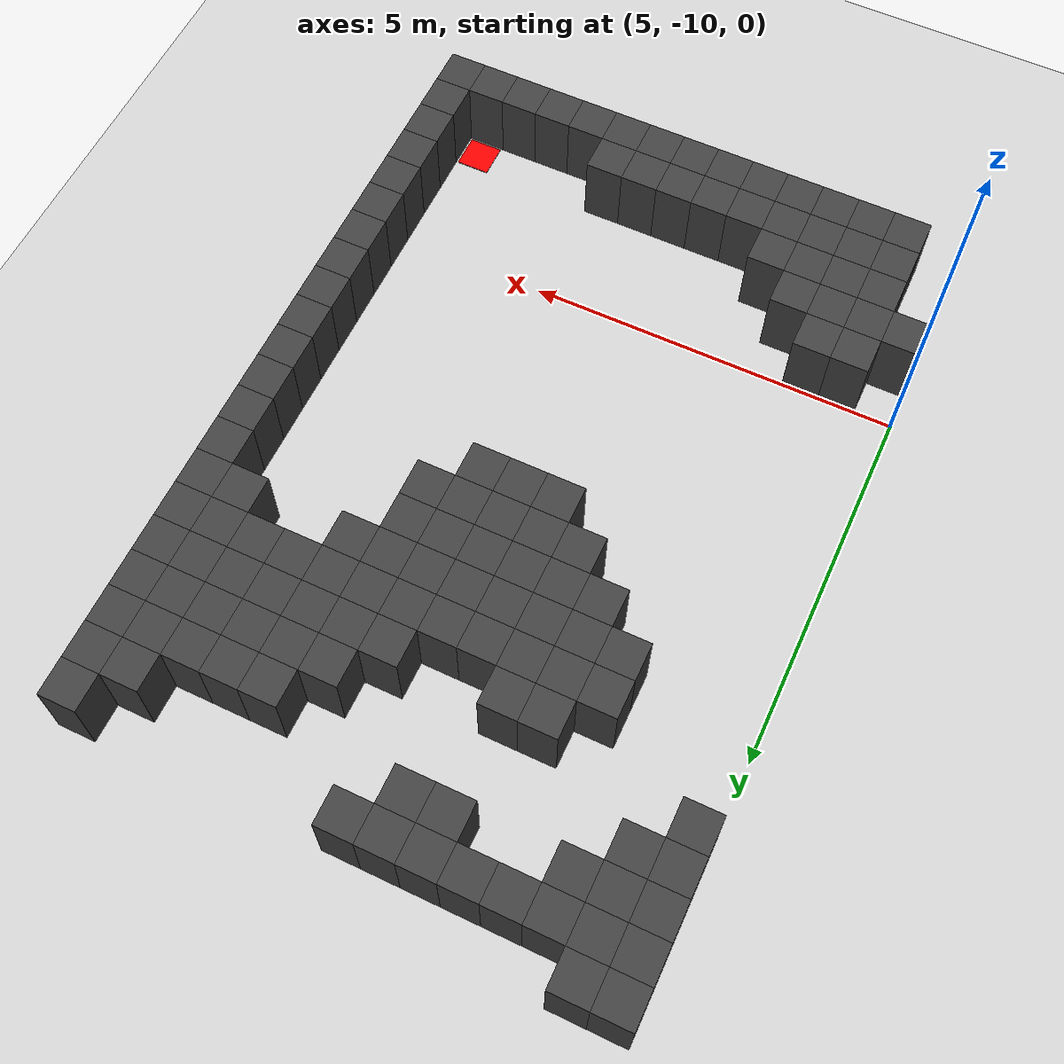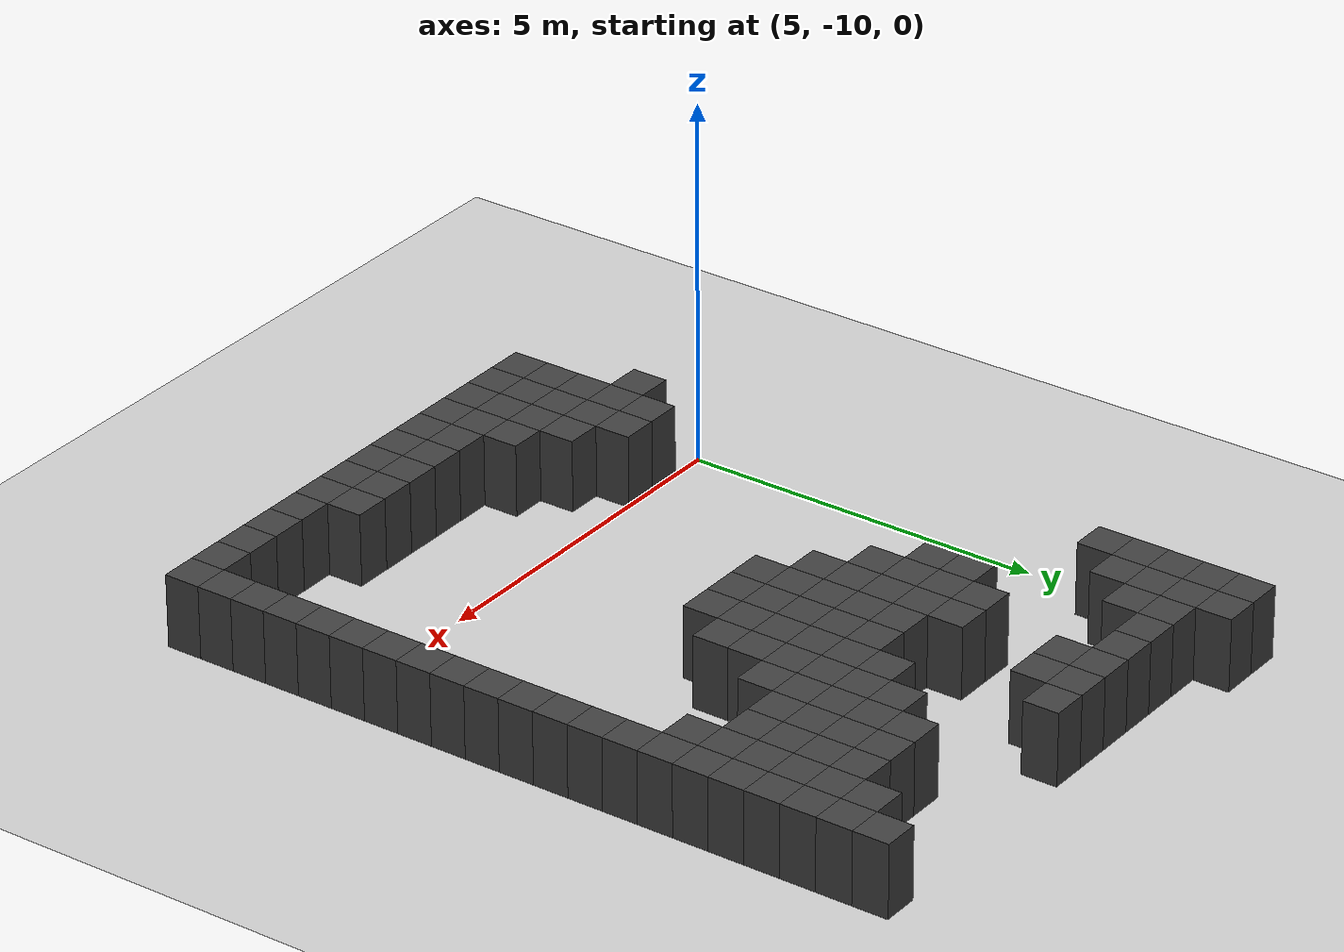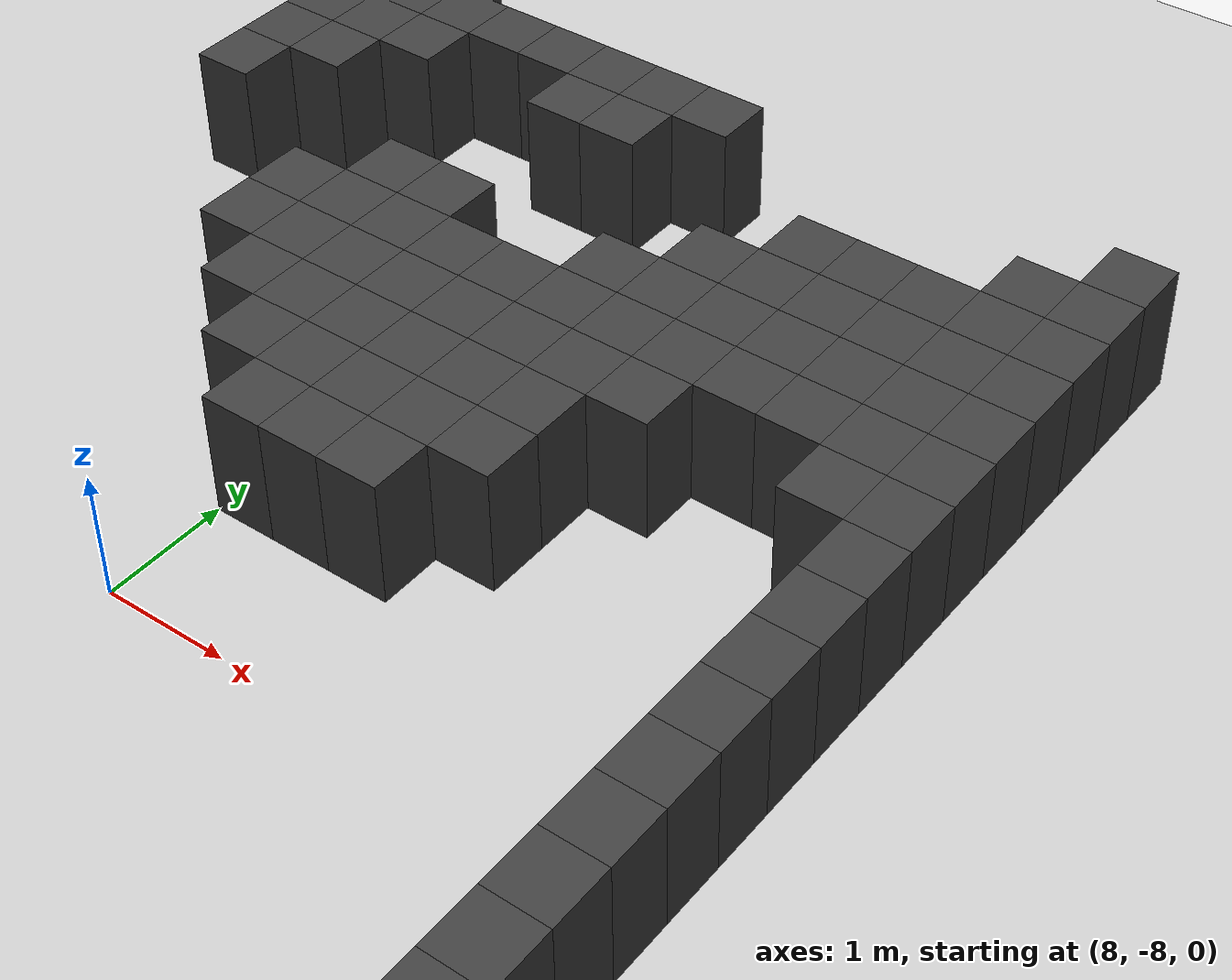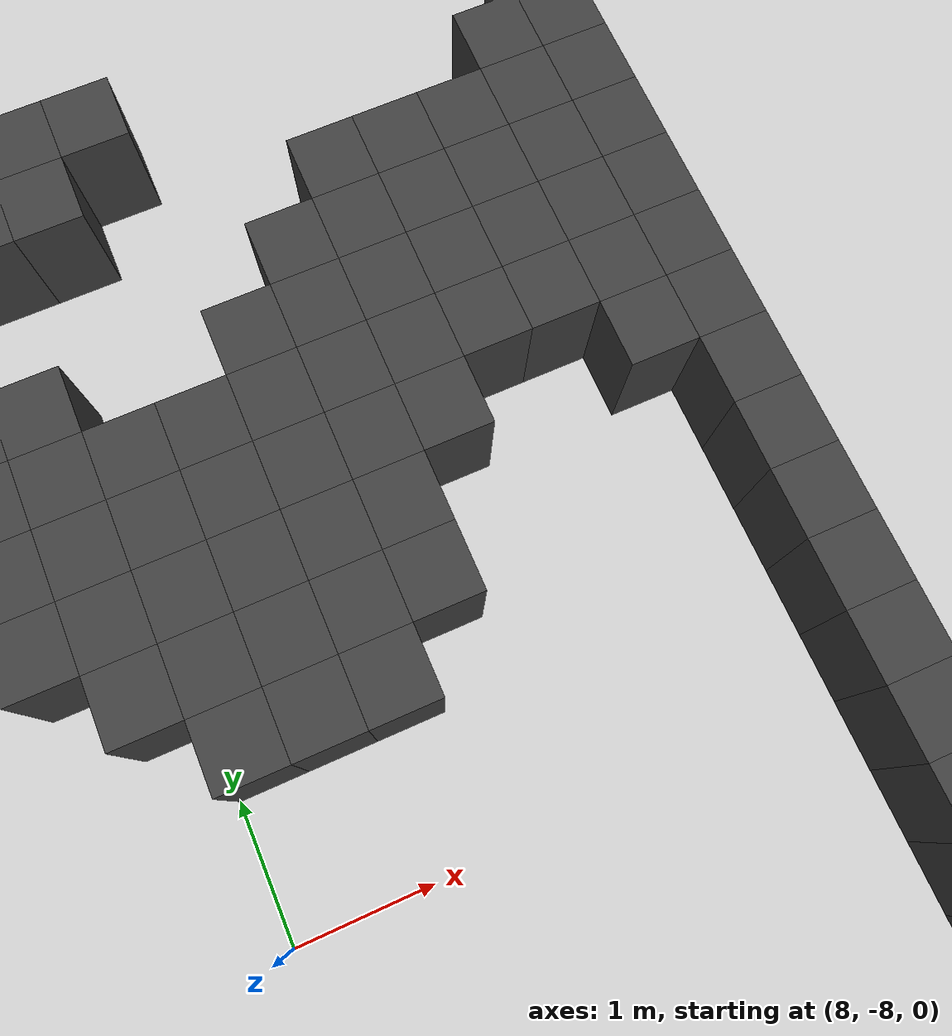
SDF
<sdf version="1.7">
 <world name="map_8382">
  <model name="ground_plane">
   <static>true</static>
   <link name="link">
    <collision name="collision">
     <geometry><plane><normal>0 0 1</normal><size>200 200</size></plane></geometry>
    </collision>
    <visual name="visual">
     <geometry><plane><normal>0 0 1</normal><size>200 200</size></plane></geometry>
     <material><ambient>0.8 0.8 0.8 1</ambient><diffuse>0.8 0.8 0.8 1</diffuse></material>
    </visual>
   </link>
  </model>
  <model name="maze_environment">
   <static>true</static>
   <link name="wall_463">
    <pose>5.250 -1.750 0.500 0 0 0</pose>
    <collision name="col"><geometry><box><size>0.5 0.5 1.0</size></box></geometry></collision>
    <visual name="vis">
     <geometry><box><size>0.5 0.5 1.0</size></box></geometry>
     <material><ambient>0.15 0.15 0.15 1</ambient><diffuse>0.25 0.25 0.25 1</diffuse></material>
    </visual>
   </link>
   <link name="wall_464">
    <pose>5.750 -1.750 0.500 0 0 0</pose>
    <collision name="col"><geometry><box><size>0.5 0.5 1.0</size></box></geometry></collision>
    <visual name="vis">
     <geometry><box><size>0.5 0.5 1.0</size></box></geometry>
     <material><ambient>0.15 0.15 0.15 1</ambient><diffuse>0.25 0.25 0.25 1</diffuse></material>
    </visual>
   </link>
   <link name="wall_481">
    <pose>5.250 -2.250 0.500 0 0 0</pose>
    <collision name="col"><geometry><box><size>0.5 0.5 1.0</size></box></geometry></collision>
    <visual name="vis">
     <geometry><box><size>0.5 0.5 1.0</size></box></geometry>
     <material><ambient>0.15 0.15 0.15 1</ambient><diffuse>0.25 0.25 0.25 1</diffuse></material>
    </visual>
   </link>
   <link name="wall_482">
    <pose>5.750 -2.250 0.500 0 0 0</pose>
    <collision name="col"><geometry><box><size>0.5 0.5 1.0</size></box></geometry></collision>
    <visual name="vis">
     <geometry><box><size>0.5 0.5 1.0</size></box></geometry>
     <material><ambient>0.15 0.15 0.15 1</ambient><diffuse>0.25 0.25 0.25 1</diffuse></material>
    </visual>
   </link>
   <link name="wall_483">
    <pose>6.250 -2.250 0.500 0 0 0</pose>
    <collision name="col"><geometry><box><size>0.5 0.5 1.0</size></box></geometry></collision>
    <visual name="vis">
     <geometry><box><size>0.5 0.5 1.0</size></box></geometry>
     <material><ambient>0.15 0.15 0.15 1</ambient><diffuse>0.25 0.25 0.25 1</diffuse></material>
    </visual>
   </link>
   <link name="wall_484">
    <pose>6.750 -2.250 0.500 0 0 0</pose>
    <collision name="col"><geometry><box><size>0.5 0.5 1.0</size></box></geometry></collision>
    <visual name="vis">
     <geometry><box><size>0.5 0.5 1.0</size></box></geometry>
     <material><ambient>0.15 0.15 0.15 1</ambient><diffuse>0.25 0.25 0.25 1</diffuse></material>
    </visual>
   </link>
   <link name="wall_485">
    <pose>7.250 -2.250 0.500 0 0 0</pose>
    <collision name="col"><geometry><box><size>0.5 0.5 1.0</size></box></geometry></collision>
    <visual name="vis">
     <geometry><box><size>0.5 0.5 1.0</size></box></geometry>
     <material><ambient>0.15 0.15 0.15 1</ambient><diffuse>0.25 0.25 0.25 1</diffuse></material>
    </visual>
   </link>
   <link name="wall_486">
    <pose>7.750 -2.250 0.500 0 0 0</pose>
    <collision name="col"><geometry><box><size>0.5 0.5 1.0</size></box></geometry></collision>
    <visual name="vis">
     <geometry><box><size>0.5 0.5 1.0</size></box></geometry>
     <material><ambient>0.15 0.15 0.15 1</ambient><diffuse>0.25 0.25 0.25 1</diffuse></material>
    </visual>
   </link>
   <link name="wall_487">
    <pose>8.250 -2.250 0.500 0 0 0</pose>
    <collision name="col"><geometry><box><size>0.5 0.5 1.0</size></box></geometry></collision>
    <visual name="vis">
     <geometry><box><size>0.5 0.5 1.0</size></box></geometry>
     <material><ambient>0.15 0.15 0.15 1</ambient><diffuse>0.25 0.25 0.25 1</diffuse></material>
    </visual>
   </link>
   <link name="wall_488">
    <pose>8.750 -2.250 0.500 0 0 0</pose>
    <collision name="col"><geometry><box><size>0.5 0.5 1.0</size></box></geometry></collision>
    <visual name="vis">
     <geometry><box><size>0.5 0.5 1.0</size></box></geometry>
     <material><ambient>0.15 0.15 0.15 1</ambient><diffuse>0.25 0.25 0.25 1</diffuse></material>
    </visual>
   </link>
   <link name="wall_489">
    <pose>12.250 -2.250 0.500 0 0 0</pose>
    <collision name="col"><geometry><box><size>0.5 0.5 1.0</size></box></geometry></collision>
    <visual name="vis">
     <geometry><box><size>0.5 0.5 1.0</size></box></geometry>
     <material><ambient>0.15 0.15 0.15 1</ambient><diffuse>0.25 0.25 0.25 1</diffuse></material>
    </visual>
   </link>
   <link name="wall_503">
    <pose>5.250 -2.750 0.500 0 0 0</pose>
    <collision name="col"><geometry><box><size>0.5 0.5 1.0</size></box></geometry></collision>
    <visual name="vis">
     <geometry><box><size>0.5 0.5 1.0</size></box></geometry>
     <material><ambient>0.15 0.15 0.15 1</ambient><diffuse>0.25 0.25 0.25 1</diffuse></material>
    </visual>
   </link>
   <link name="wall_504">
    <pose>5.750 -2.750 0.500 0 0 0</pose>
    <collision name="col"><geometry><box><size>0.5 0.5 1.0</size></box></geometry></collision>
    <visual name="vis">
     <geometry><box><size>0.5 0.5 1.0</size></box></geometry>
     <material><ambient>0.15 0.15 0.15 1</ambient><diffuse>0.25 0.25 0.25 1</diffuse></material>
    </visual>
   </link>
   <link name="wall_505">
    <pose>6.250 -2.750 0.500 0 0 0</pose>
    <collision name="col"><geometry><box><size>0.5 0.5 1.0</size></box></geometry></collision>
    <visual name="vis">
     <geometry><box><size>0.5 0.5 1.0</size></box></geometry>
     <material><ambient>0.15 0.15 0.15 1</ambient><diffuse>0.25 0.25 0.25 1</diffuse></material>
    </visual>
   </link>
   <link name="wall_506">
    <pose>7.750 -2.750 0.500 0 0 0</pose>
    <collision name="col"><geometry><box><size>0.5 0.5 1.0</size></box></geometry></collision>
    <visual name="vis">
     <geometry><box><size>0.5 0.5 1.0</size></box></geometry>
     <material><ambient>0.15 0.15 0.15 1</ambient><diffuse>0.25 0.25 0.25 1</diffuse></material>
    </visual>
   </link>
   <link name="wall_507">
    <pose>8.250 -2.750 0.500 0 0 0</pose>
    <collision name="col"><geometry><box><size>0.5 0.5 1.0</size></box></geometry></collision>
    <visual name="vis">
     <geometry><box><size>0.5 0.5 1.0</size></box></geometry>
     <material><ambient>0.15 0.15 0.15 1</ambient><diffuse>0.25 0.25 0.25 1</diffuse></material>
    </visual>
   </link>
   <link name="wall_508">
    <pose>11.750 -2.750 0.500 0 0 0</pose>
    <collision name="col"><geometry><box><size>0.5 0.5 1.0</size></box></geometry></collision>
    <visual name="vis">
     <geometry><box><size>0.5 0.5 1.0</size></box></geometry>
     <material><ambient>0.15 0.15 0.15 1</ambient><diffuse>0.25 0.25 0.25 1</diffuse></material>
    </visual>
   </link>
   <link name="wall_509">
    <pose>12.250 -2.750 0.500 0 0 0</pose>
    <collision name="col"><geometry><box><size>0.5 0.5 1.0</size></box></geometry></collision>
    <visual name="vis">
     <geometry><box><size>0.5 0.5 1.0</size></box></geometry>
     <material><ambient>0.15 0.15 0.15 1</ambient><diffuse>0.25 0.25 0.25 1</diffuse></material>
    </visual>
   </link>
   <link name="wall_526">
    <pose>5.250 -3.250 0.500 0 0 0</pose>
    <collision name="col"><geometry><box><size>0.5 0.5 1.0</size></box></geometry></collision>
    <visual name="vis">
     <geometry><box><size>0.5 0.5 1.0</size></box></geometry>
     <material><ambient>0.15 0.15 0.15 1</ambient><diffuse>0.25 0.25 0.25 1</diffuse></material>
    </visual>
   </link>
   <link name="wall_527">
    <pose>5.750 -3.250 0.500 0 0 0</pose>
    <collision name="col"><geometry><box><size>0.5 0.5 1.0</size></box></geometry></collision>
    <visual name="vis">
     <geometry><box><size>0.5 0.5 1.0</size></box></geometry>
     <material><ambient>0.15 0.15 0.15 1</ambient><diffuse>0.25 0.25 0.25 1</diffuse></material>
    </visual>
   </link>
   <link name="wall_528">
    <pose>10.250 -3.250 0.500 0 0 0</pose>
    <collision name="col"><geometry><box><size>0.5 0.5 1.0</size></box></geometry></collision>
    <visual name="vis">
     <geometry><box><size>0.5 0.5 1.0</size></box></geometry>
     <material><ambient>0.15 0.15 0.15 1</ambient><diffuse>0.25 0.25 0.25 1</diffuse></material>
    </visual>
   </link>
   <link name="wall_529">
    <pose>10.750 -3.250 0.500 0 0 0</pose>
    <collision name="col"><geometry><box><size>0.5 0.5 1.0</size></box></geometry></collision>
    <visual name="vis">
     <geometry><box><size>0.5 0.5 1.0</size></box></geometry>
     <material><ambient>0.15 0.15 0.15 1</ambient><diffuse>0.25 0.25 0.25 1</diffuse></material>
    </visual>
   </link>
   <link name="wall_530">
    <pose>11.250 -3.250 0.500 0 0 0</pose>
    <collision name="col"><geometry><box><size>0.5 0.5 1.0</size></box></geometry></collision>
    <visual name="vis">
     <geometry><box><size>0.5 0.5 1.0</size></box></geometry>
     <material><ambient>0.15 0.15 0.15 1</ambient><diffuse>0.25 0.25 0.25 1</diffuse></material>
    </visual>
   </link>
   <link name="wall_531">
    <pose>11.750 -3.250 0.500 0 0 0</pose>
    <collision name="col"><geometry><box><size>0.5 0.5 1.0</size></box></geometry></collision>
    <visual name="vis">
     <geometry><box><size>0.5 0.5 1.0</size></box></geometry>
     <material><ambient>0.15 0.15 0.15 1</ambient><diffuse>0.25 0.25 0.25 1</diffuse></material>
    </visual>
   </link>
   <link name="wall_532">
    <pose>12.250 -3.250 0.500 0 0 0</pose>
    <collision name="col"><geometry><box><size>0.5 0.5 1.0</size></box></geometry></collision>
    <visual name="vis">
     <geometry><box><size>0.5 0.5 1.0</size></box></geometry>
     <material><ambient>0.15 0.15 0.15 1</ambient><diffuse>0.25 0.25 0.25 1</diffuse></material>
    </visual>
   </link>
   <link name="wall_553">
    <pose>5.250 -3.750 0.500 0 0 0</pose>
    <collision name="col"><geometry><box><size>0.5 0.5 1.0</size></box></geometry></collision>
    <visual name="vis">
     <geometry><box><size>0.5 0.5 1.0</size></box></geometry>
     <material><ambient>0.15 0.15 0.15 1</ambient><diffuse>0.25 0.25 0.25 1</diffuse></material>
    </visual>
   </link>
   <link name="wall_554">
    <pose>9.750 -3.750 0.500 0 0 0</pose>
    <collision name="col"><geometry><box><size>0.5 0.5 1.0</size></box></geometry></collision>
    <visual name="vis">
     <geometry><box><size>0.5 0.5 1.0</size></box></geometry>
     <material><ambient>0.15 0.15 0.15 1</ambient><diffuse>0.25 0.25 0.25 1</diffuse></material>
    </visual>
   </link>
   <link name="wall_555">
    <pose>10.250 -3.750 0.500 0 0 0</pose>
    <collision name="col"><geometry><box><size>0.5 0.5 1.0</size></box></geometry></collision>
    <visual name="vis">
     <geometry><box><size>0.5 0.5 1.0</size></box></geometry>
     <material><ambient>0.15 0.15 0.15 1</ambient><diffuse>0.25 0.25 0.25 1</diffuse></material>
    </visual>
   </link>
   <link name="wall_556">
    <pose>10.750 -3.750 0.500 0 0 0</pose>
    <collision name="col"><geometry><box><size>0.5 0.5 1.0</size></box></geometry></collision>
    <visual name="vis">
     <geometry><box><size>0.5 0.5 1.0</size></box></geometry>
     <material><ambient>0.15 0.15 0.15 1</ambient><diffuse>0.25 0.25 0.25 1</diffuse></material>
    </visual>
   </link>
   <link name="wall_557">
    <pose>11.250 -3.750 0.500 0 0 0</pose>
    <collision name="col"><geometry><box><size>0.5 0.5 1.0</size></box></geometry></collision>
    <visual name="vis">
     <geometry><box><size>0.5 0.5 1.0</size></box></geometry>
     <material><ambient>0.15 0.15 0.15 1</ambient><diffuse>0.25 0.25 0.25 1</diffuse></material>
    </visual>
   </link>
   <link name="wall_558">
    <pose>11.750 -3.750 0.500 0 0 0</pose>
    <collision name="col"><geometry><box><size>0.5 0.5 1.0</size></box></geometry></collision>
    <visual name="vis">
     <geometry><box><size>0.5 0.5 1.0</size></box></geometry>
     <material><ambient>0.15 0.15 0.15 1</ambient><diffuse>0.25 0.25 0.25 1</diffuse></material>
    </visual>
   </link>
   <link name="wall_559">
    <pose>12.250 -3.750 0.500 0 0 0</pose>
    <collision name="col"><geometry><box><size>0.5 0.5 1.0</size></box></geometry></collision>
    <visual name="vis">
     <geometry><box><size>0.5 0.5 1.0</size></box></geometry>
     <material><ambient>0.15 0.15 0.15 1</ambient><diffuse>0.25 0.25 0.25 1</diffuse></material>
    </visual>
   </link>
   <link name="wall_578">
    <pose>7.250 -4.250 0.500 0 0 0</pose>
    <collision name="col"><geometry><box><size>0.5 0.5 1.0</size></box></geometry></collision>
    <visual name="vis">
     <geometry><box><size>0.5 0.5 1.0</size></box></geometry>
     <material><ambient>0.15 0.15 0.15 1</ambient><diffuse>0.25 0.25 0.25 1</diffuse></material>
    </visual>
   </link>
   <link name="wall_579">
    <pose>7.750 -4.250 0.500 0 0 0</pose>
    <collision name="col"><geometry><box><size>0.5 0.5 1.0</size></box></geometry></collision>
    <visual name="vis">
     <geometry><box><size>0.5 0.5 1.0</size></box></geometry>
     <material><ambient>0.15 0.15 0.15 1</ambient><diffuse>0.25 0.25 0.25 1</diffuse></material>
    </visual>
   </link>
   <link name="wall_580">
    <pose>9.250 -4.250 0.500 0 0 0</pose>
    <collision name="col"><geometry><box><size>0.5 0.5 1.0</size></box></geometry></collision>
    <visual name="vis">
     <geometry><box><size>0.5 0.5 1.0</size></box></geometry>
     <material><ambient>0.15 0.15 0.15 1</ambient><diffuse>0.25 0.25 0.25 1</diffuse></material>
    </visual>
   </link>
   <link name="wall_581">
    <pose>9.750 -4.250 0.500 0 0 0</pose>
    <collision name="col"><geometry><box><size>0.5 0.5 1.0</size></box></geometry></collision>
    <visual name="vis">
     <geometry><box><size>0.5 0.5 1.0</size></box></geometry>
     <material><ambient>0.15 0.15 0.15 1</ambient><diffuse>0.25 0.25 0.25 1</diffuse></material>
    </visual>
   </link>
   <link name="wall_582">
    <pose>10.250 -4.250 0.500 0 0 0</pose>
    <collision name="col"><geometry><box><size>0.5 0.5 1.0</size></box></geometry></collision>
    <visual name="vis">
     <geometry><box><size>0.5 0.5 1.0</size></box></geometry>
     <material><ambient>0.15 0.15 0.15 1</ambient><diffuse>0.25 0.25 0.25 1</diffuse></material>
    </visual>
   </link>
   <link name="wall_583">
    <pose>10.750 -4.250 0.500 0 0 0</pose>
    <collision name="col"><geometry><box><size>0.5 0.5 1.0</size></box></geometry></collision>
    <visual name="vis">
     <geometry><box><size>0.5 0.5 1.0</size></box></geometry>
     <material><ambient>0.15 0.15 0.15 1</ambient><diffuse>0.25 0.25 0.25 1</diffuse></material>
    </visual>
   </link>
   <link name="wall_584">
    <pose>11.250 -4.250 0.500 0 0 0</pose>
    <collision name="col"><geometry><box><size>0.5 0.5 1.0</size></box></geometry></collision>
    <visual name="vis">
     <geometry><box><size>0.5 0.5 1.0</size></box></geometry>
     <material><ambient>0.15 0.15 0.15 1</ambient><diffuse>0.25 0.25 0.25 1</diffuse></material>
    </visual>
   </link>
   <link name="wall_585">
    <pose>11.750 -4.250 0.500 0 0 0</pose>
    <collision name="col"><geometry><box><size>0.5 0.5 1.0</size></box></geometry></collision>
    <visual name="vis">
     <geometry><box><size>0.5 0.5 1.0</size></box></geometry>
     <material><ambient>0.15 0.15 0.15 1</ambient><diffuse>0.25 0.25 0.25 1</diffuse></material>
    </visual>
   </link>
   <link name="wall_586">
    <pose>12.250 -4.250 0.500 0 0 0</pose>
    <collision name="col"><geometry><box><size>0.5 0.5 1.0</size></box></geometry></collision>
    <visual name="vis">
     <geometry><box><size>0.5 0.5 1.0</size></box></geometry>
     <material><ambient>0.15 0.15 0.15 1</ambient><diffuse>0.25 0.25 0.25 1</diffuse></material>
    </visual>
   </link>
   <link name="wall_596">
    <pose>6.750 -4.750 0.500 0 0 0</pose>
    <collision name="col"><geometry><box><size>0.5 0.5 1.0</size></box></geometry></collision>
    <visual name="vis">
     <geometry><box><size>0.5 0.5 1.0</size></box></geometry>
     <material><ambient>0.15 0.15 0.15 1</ambient><diffuse>0.25 0.25 0.25 1</diffuse></material>
    </visual>
   </link>
   <link name="wall_597">
    <pose>7.250 -4.750 0.500 0 0 0</pose>
    <collision name="col"><geometry><box><size>0.5 0.5 1.0</size></box></geometry></collision>
    <visual name="vis">
     <geometry><box><size>0.5 0.5 1.0</size></box></geometry>
     <material><ambient>0.15 0.15 0.15 1</ambient><diffuse>0.25 0.25 0.25 1</diffuse></material>
    </visual>
   </link>
   <link name="wall_598">
    <pose>7.750 -4.750 0.500 0 0 0</pose>
    <collision name="col"><geometry><box><size>0.5 0.5 1.0</size></box></geometry></collision>
    <visual name="vis">
     <geometry><box><size>0.5 0.5 1.0</size></box></geometry>
     <material><ambient>0.15 0.15 0.15 1</ambient><diffuse>0.25 0.25 0.25 1</diffuse></material>
    </visual>
   </link>
   <link name="wall_599">
    <pose>8.250 -4.750 0.500 0 0 0</pose>
    <collision name="col"><geometry><box><size>0.5 0.5 1.0</size></box></geometry></collision>
    <visual name="vis">
     <geometry><box><size>0.5 0.5 1.0</size></box></geometry>
     <material><ambient>0.15 0.15 0.15 1</ambient><diffuse>0.25 0.25 0.25 1</diffuse></material>
    </visual>
   </link>
   <link name="wall_600">
    <pose>8.750 -4.750 0.500 0 0 0</pose>
    <collision name="col"><geometry><box><size>0.5 0.5 1.0</size></box></geometry></collision>
    <visual name="vis">
     <geometry><box><size>0.5 0.5 1.0</size></box></geometry>
     <material><ambient>0.15 0.15 0.15 1</ambient><diffuse>0.25 0.25 0.25 1</diffuse></material>
    </visual>
   </link>
   <link name="wall_601">
    <pose>9.250 -4.750 0.500 0 0 0</pose>
    <collision name="col"><geometry><box><size>0.5 0.5 1.0</size></box></geometry></collision>
    <visual name="vis">
     <geometry><box><size>0.5 0.5 1.0</size></box></geometry>
     <material><ambient>0.15 0.15 0.15 1</ambient><diffuse>0.25 0.25 0.25 1</diffuse></material>
    </visual>
   </link>
   <link name="wall_602">
    <pose>9.750 -4.750 0.500 0 0 0</pose>
    <collision name="col"><geometry><box><size>0.5 0.5 1.0</size></box></geometry></collision>
    <visual name="vis">
     <geometry><box><size>0.5 0.5 1.0</size></box></geometry>
     <material><ambient>0.15 0.15 0.15 1</ambient><diffuse>0.25 0.25 0.25 1</diffuse></material>
    </visual>
   </link>
   <link name="wall_603">
    <pose>10.250 -4.750 0.500 0 0 0</pose>
    <collision name="col"><geometry><box><size>0.5 0.5 1.0</size></box></geometry></collision>
    <visual name="vis">
     <geometry><box><size>0.5 0.5 1.0</size></box></geometry>
     <material><ambient>0.15 0.15 0.15 1</ambient><diffuse>0.25 0.25 0.25 1</diffuse></material>
    </visual>
   </link>
   <link name="wall_604">
    <pose>10.750 -4.750 0.500 0 0 0</pose>
    <collision name="col"><geometry><box><size>0.5 0.5 1.0</size></box></geometry></collision>
    <visual name="vis">
     <geometry><box><size>0.5 0.5 1.0</size></box></geometry>
     <material><ambient>0.15 0.15 0.15 1</ambient><diffuse>0.25 0.25 0.25 1</diffuse></material>
    </visual>
   </link>
   <link name="wall_605">
    <pose>11.250 -4.750 0.500 0 0 0</pose>
    <collision name="col"><geometry><box><size>0.5 0.5 1.0</size></box></geometry></collision>
    <visual name="vis">
     <geometry><box><size>0.5 0.5 1.0</size></box></geometry>
     <material><ambient>0.15 0.15 0.15 1</ambient><diffuse>0.25 0.25 0.25 1</diffuse></material>
    </visual>
   </link>
   <link name="wall_606">
    <pose>11.750 -4.750 0.500 0 0 0</pose>
    <collision name="col"><geometry><box><size>0.5 0.5 1.0</size></box></geometry></collision>
    <visual name="vis">
     <geometry><box><size>0.5 0.5 1.0</size></box></geometry>
     <material><ambient>0.15 0.15 0.15 1</ambient><diffuse>0.25 0.25 0.25 1</diffuse></material>
    </visual>
   </link>
   <link name="wall_607">
    <pose>12.250 -4.750 0.500 0 0 0</pose>
    <collision name="col"><geometry><box><size>0.5 0.5 1.0</size></box></geometry></collision>
    <visual name="vis">
     <geometry><box><size>0.5 0.5 1.0</size></box></geometry>
     <material><ambient>0.15 0.15 0.15 1</ambient><diffuse>0.25 0.25 0.25 1</diffuse></material>
    </visual>
   </link>
   <link name="wall_613">
    <pose>6.750 -5.250 0.500 0 0 0</pose>
    <collision name="col"><geometry><box><size>0.5 0.5 1.0</size></box></geometry></collision>
    <visual name="vis">
     <geometry><box><size>0.5 0.5 1.0</size></box></geometry>
     <material><ambient>0.15 0.15 0.15 1</ambient><diffuse>0.25 0.25 0.25 1</diffuse></material>
    </visual>
   </link>
   <link name="wall_614">
    <pose>7.250 -5.250 0.500 0 0 0</pose>
    <collision name="col"><geometry><box><size>0.5 0.5 1.0</size></box></geometry></collision>
    <visual name="vis">
     <geometry><box><size>0.5 0.5 1.0</size></box></geometry>
     <material><ambient>0.15 0.15 0.15 1</ambient><diffuse>0.25 0.25 0.25 1</diffuse></material>
    </visual>
   </link>
   <link name="wall_615">
    <pose>7.750 -5.250 0.500 0 0 0</pose>
    <collision name="col"><geometry><box><size>0.5 0.5 1.0</size></box></geometry></collision>
    <visual name="vis">
     <geometry><box><size>0.5 0.5 1.0</size></box></geometry>
     <material><ambient>0.15 0.15 0.15 1</ambient><diffuse>0.25 0.25 0.25 1</diffuse></material>
    </visual>
   </link>
   <link name="wall_616">
    <pose>8.250 -5.250 0.500 0 0 0</pose>
    <collision name="col"><geometry><box><size>0.5 0.5 1.0</size></box></geometry></collision>
    <visual name="vis">
     <geometry><box><size>0.5 0.5 1.0</size></box></geometry>
     <material><ambient>0.15 0.15 0.15 1</ambient><diffuse>0.25 0.25 0.25 1</diffuse></material>
    </visual>
   </link>
   <link name="wall_617">
    <pose>8.750 -5.250 0.500 0 0 0</pose>
    <collision name="col"><geometry><box><size>0.5 0.5 1.0</size></box></geometry></collision>
    <visual name="vis">
     <geometry><box><size>0.5 0.5 1.0</size></box></geometry>
     <material><ambient>0.15 0.15 0.15 1</ambient><diffuse>0.25 0.25 0.25 1</diffuse></material>
    </visual>
   </link>
   <link name="wall_618">
    <pose>9.250 -5.250 0.500 0 0 0</pose>
    <collision name="col"><geometry><box><size>0.5 0.5 1.0</size></box></geometry></collision>
    <visual name="vis">
     <geometry><box><size>0.5 0.5 1.0</size></box></geometry>
     <material><ambient>0.15 0.15 0.15 1</ambient><diffuse>0.25 0.25 0.25 1</diffuse></material>
    </visual>
   </link>
   <link name="wall_619">
    <pose>9.750 -5.250 0.500 0 0 0</pose>
    <collision name="col"><geometry><box><size>0.5 0.5 1.0</size></box></geometry></collision>
    <visual name="vis">
     <geometry><box><size>0.5 0.5 1.0</size></box></geometry>
     <material><ambient>0.15 0.15 0.15 1</ambient><diffuse>0.25 0.25 0.25 1</diffuse></material>
    </visual>
   </link>
   <link name="wall_620">
    <pose>10.250 -5.250 0.500 0 0 0</pose>
    <collision name="col"><geometry><box><size>0.5 0.5 1.0</size></box></geometry></collision>
    <visual name="vis">
     <geometry><box><size>0.5 0.5 1.0</size></box></geometry>
     <material><ambient>0.15 0.15 0.15 1</ambient><diffuse>0.25 0.25 0.25 1</diffuse></material>
    </visual>
   </link>
   <link name="wall_621">
    <pose>11.750 -5.250 0.500 0 0 0</pose>
    <collision name="col"><geometry><box><size>0.5 0.5 1.0</size></box></geometry></collision>
    <visual name="vis">
     <geometry><box><size>0.5 0.5 1.0</size></box></geometry>
     <material><ambient>0.15 0.15 0.15 1</ambient><diffuse>0.25 0.25 0.25 1</diffuse></material>
    </visual>
   </link>
   <link name="wall_622">
    <pose>12.250 -5.250 0.500 0 0 0</pose>
    <collision name="col"><geometry><box><size>0.5 0.5 1.0</size></box></geometry></collision>
    <visual name="vis">
     <geometry><box><size>0.5 0.5 1.0</size></box></geometry>
     <material><ambient>0.15 0.15 0.15 1</ambient><diffuse>0.25 0.25 0.25 1</diffuse></material>
    </visual>
   </link>
   <link name="wall_627">
    <pose>7.250 -5.750 0.500 0 0 0</pose>
    <collision name="col"><geometry><box><size>0.5 0.5 1.0</size></box></geometry></collision>
    <visual name="vis">
     <geometry><box><size>0.5 0.5 1.0</size></box></geometry>
     <material><ambient>0.15 0.15 0.15 1</ambient><diffuse>0.25 0.25 0.25 1</diffuse></material>
    </visual>
   </link>
   <link name="wall_628">
    <pose>7.750 -5.750 0.500 0 0 0</pose>
    <collision name="col"><geometry><box><size>0.5 0.5 1.0</size></box></geometry></collision>
    <visual name="vis">
     <geometry><box><size>0.5 0.5 1.0</size></box></geometry>
     <material><ambient>0.15 0.15 0.15 1</ambient><diffuse>0.25 0.25 0.25 1</diffuse></material>
    </visual>
   </link>
   <link name="wall_629">
    <pose>8.250 -5.750 0.500 0 0 0</pose>
    <collision name="col"><geometry><box><size>0.5 0.5 1.0</size></box></geometry></collision>
    <visual name="vis">
     <geometry><box><size>0.5 0.5 1.0</size></box></geometry>
     <material><ambient>0.15 0.15 0.15 1</ambient><diffuse>0.25 0.25 0.25 1</diffuse></material>
    </visual>
   </link>
   <link name="wall_630">
    <pose>8.750 -5.750 0.500 0 0 0</pose>
    <collision name="col"><geometry><box><size>0.5 0.5 1.0</size></box></geometry></collision>
    <visual name="vis">
     <geometry><box><size>0.5 0.5 1.0</size></box></geometry>
     <material><ambient>0.15 0.15 0.15 1</ambient><diffuse>0.25 0.25 0.25 1</diffuse></material>
    </visual>
   </link>
   <link name="wall_631">
    <pose>9.250 -5.750 0.500 0 0 0</pose>
    <collision name="col"><geometry><box><size>0.5 0.5 1.0</size></box></geometry></collision>
    <visual name="vis">
     <geometry><box><size>0.5 0.5 1.0</size></box></geometry>
     <material><ambient>0.15 0.15 0.15 1</ambient><diffuse>0.25 0.25 0.25 1</diffuse></material>
    </visual>
   </link>
   <link name="wall_632">
    <pose>9.750 -5.750 0.500 0 0 0</pose>
    <collision name="col"><geometry><box><size>0.5 0.5 1.0</size></box></geometry></collision>
    <visual name="vis">
     <geometry><box><size>0.5 0.5 1.0</size></box></geometry>
     <material><ambient>0.15 0.15 0.15 1</ambient><diffuse>0.25 0.25 0.25 1</diffuse></material>
    </visual>
   </link>
   <link name="wall_633">
    <pose>12.250 -5.750 0.500 0 0 0</pose>
    <collision name="col"><geometry><box><size>0.5 0.5 1.0</size></box></geometry></collision>
    <visual name="vis">
     <geometry><box><size>0.5 0.5 1.0</size></box></geometry>
     <material><ambient>0.15 0.15 0.15 1</ambient><diffuse>0.25 0.25 0.25 1</diffuse></material>
    </visual>
   </link>
   <link name="wall_639">
    <pose>7.750 -6.250 0.500 0 0 0</pose>
    <collision name="col"><geometry><box><size>0.5 0.5 1.0</size></box></geometry></collision>
    <visual name="vis">
     <geometry><box><size>0.5 0.5 1.0</size></box></geometry>
     <material><ambient>0.15 0.15 0.15 1</ambient><diffuse>0.25 0.25 0.25 1</diffuse></material>
    </visual>
   </link>
   <link name="wall_640">
    <pose>8.250 -6.250 0.500 0 0 0</pose>
    <collision name="col"><geometry><box><size>0.5 0.5 1.0</size></box></geometry></collision>
    <visual name="vis">
     <geometry><box><size>0.5 0.5 1.0</size></box></geometry>
     <material><ambient>0.15 0.15 0.15 1</ambient><diffuse>0.25 0.25 0.25 1</diffuse></material>
    </visual>
   </link>
   <link name="wall_641">
    <pose>8.750 -6.250 0.500 0 0 0</pose>
    <collision name="col"><geometry><box><size>0.5 0.5 1.0</size></box></geometry></collision>
    <visual name="vis">
     <geometry><box><size>0.5 0.5 1.0</size></box></geometry>
     <material><ambient>0.15 0.15 0.15 1</ambient><diffuse>0.25 0.25 0.25 1</diffuse></material>
    </visual>
   </link>
   <link name="wall_642">
    <pose>9.250 -6.250 0.500 0 0 0</pose>
    <collision name="col"><geometry><box><size>0.5 0.5 1.0</size></box></geometry></collision>
    <visual name="vis">
     <geometry><box><size>0.5 0.5 1.0</size></box></geometry>
     <material><ambient>0.15 0.15 0.15 1</ambient><diffuse>0.25 0.25 0.25 1</diffuse></material>
    </visual>
   </link>
   <link name="wall_643">
    <pose>9.750 -6.250 0.500 0 0 0</pose>
    <collision name="col"><geometry><box><size>0.5 0.5 1.0</size></box></geometry></collision>
    <visual name="vis">
     <geometry><box><size>0.5 0.5 1.0</size></box></geometry>
     <material><ambient>0.15 0.15 0.15 1</ambient><diffuse>0.25 0.25 0.25 1</diffuse></material>
    </visual>
   </link>
   <link name="wall_644">
    <pose>12.250 -6.250 0.500 0 0 0</pose>
    <collision name="col"><geometry><box><size>0.5 0.5 1.0</size></box></geometry></collision>
    <visual name="vis">
     <geometry><box><size>0.5 0.5 1.0</size></box></geometry>
     <material><ambient>0.15 0.15 0.15 1</ambient><diffuse>0.25 0.25 0.25 1</diffuse></material>
    </visual>
   </link>
   <link name="wall_650">
    <pose>8.250 -6.750 0.500 0 0 0</pose>
    <collision name="col"><geometry><box><size>0.5 0.5 1.0</size></box></geometry></collision>
    <visual name="vis">
     <geometry><box><size>0.5 0.5 1.0</size></box></geometry>
     <material><ambient>0.15 0.15 0.15 1</ambient><diffuse>0.25 0.25 0.25 1</diffuse></material>
    </visual>
   </link>
   <link name="wall_651">
    <pose>8.750 -6.750 0.500 0 0 0</pose>
    <collision name="col"><geometry><box><size>0.5 0.5 1.0</size></box></geometry></collision>
    <visual name="vis">
     <geometry><box><size>0.5 0.5 1.0</size></box></geometry>
     <material><ambient>0.15 0.15 0.15 1</ambient><diffuse>0.25 0.25 0.25 1</diffuse></material>
    </visual>
   </link>
   <link name="wall_652">
    <pose>9.250 -6.750 0.500 0 0 0</pose>
    <collision name="col"><geometry><box><size>0.5 0.5 1.0</size></box></geometry></collision>
    <visual name="vis">
     <geometry><box><size>0.5 0.5 1.0</size></box></geometry>
     <material><ambient>0.15 0.15 0.15 1</ambient><diffuse>0.25 0.25 0.25 1</diffuse></material>
    </visual>
   </link>
   <link name="wall_653">
    <pose>12.250 -6.750 0.500 0 0 0</pose>
    <collision name="col"><geometry><box><size>0.5 0.5 1.0</size></box></geometry></collision>
    <visual name="vis">
     <geometry><box><size>0.5 0.5 1.0</size></box></geometry>
     <material><ambient>0.15 0.15 0.15 1</ambient><diffuse>0.25 0.25 0.25 1</diffuse></material>
    </visual>
   </link>
   <link name="wall_659">
    <pose>12.250 -7.250 0.500 0 0 0</pose>
    <collision name="col"><geometry><box><size>0.5 0.5 1.0</size></box></geometry></collision>
    <visual name="vis">
     <geometry><box><size>0.5 0.5 1.0</size></box></geometry>
     <material><ambient>0.15 0.15 0.15 1</ambient><diffuse>0.25 0.25 0.25 1</diffuse></material>
    </visual>
   </link>
   <link name="wall_667">
    <pose>12.250 -7.750 0.500 0 0 0</pose>
    <collision name="col"><geometry><box><size>0.5 0.5 1.0</size></box></geometry></collision>
    <visual name="vis">
     <geometry><box><size>0.5 0.5 1.0</size></box></geometry>
     <material><ambient>0.15 0.15 0.15 1</ambient><diffuse>0.25 0.25 0.25 1</diffuse></material>
    </visual>
   </link>
   <link name="wall_680">
    <pose>12.250 -8.250 0.500 0 0 0</pose>
    <collision name="col"><geometry><box><size>0.5 0.5 1.0</size></box></geometry></collision>
    <visual name="vis">
     <geometry><box><size>0.5 0.5 1.0</size></box></geometry>
     <material><ambient>0.15 0.15 0.15 1</ambient><diffuse>0.25 0.25 0.25 1</diffuse></material>
    </visual>
   </link>
   <link name="wall_696">
    <pose>12.250 -8.750 0.500 0 0 0</pose>
    <collision name="col"><geometry><box><size>0.5 0.5 1.0</size></box></geometry></collision>
    <visual name="vis">
     <geometry><box><size>0.5 0.5 1.0</size></box></geometry>
     <material><ambient>0.15 0.15 0.15 1</ambient><diffuse>0.25 0.25 0.25 1</diffuse></material>
    </visual>
   </link>
   <link name="wall_714">
    <pose>12.250 -9.250 0.500 0 0 0</pose>
    <collision name="col"><geometry><box><size>0.5 0.5 1.0</size></box></geometry></collision>
    <visual name="vis">
     <geometry><box><size>0.5 0.5 1.0</size></box></geometry>
     <material><ambient>0.15 0.15 0.15 1</ambient><diffuse>0.25 0.25 0.25 1</diffuse></material>
    </visual>
   </link>
   <link name="wall_732">
    <pose>12.250 -9.750 0.500 0 0 0</pose>
    <collision name="col"><geometry><box><size>0.5 0.5 1.0</size></box></geometry></collision>
    <visual name="vis">
     <geometry><box><size>0.5 0.5 1.0</size></box></geometry>
     <material><ambient>0.15 0.15 0.15 1</ambient><diffuse>0.25 0.25 0.25 1</diffuse></material>
    </visual>
   </link>
   <link name="wall_747">
    <pose>5.750 -10.250 0.500 0 0 0</pose>
    <collision name="col"><geometry><box><size>0.5 0.5 1.0</size></box></geometry></collision>
    <visual name="vis">
     <geometry><box><size>0.5 0.5 1.0</size></box></geometry>
     <material><ambient>0.15 0.15 0.15 1</ambient><diffuse>0.25 0.25 0.25 1</diffuse></material>
    </visual>
   </link>
   <link name="wall_748">
    <pose>6.250 -10.250 0.500 0 0 0</pose>
    <collision name="col"><geometry><box><size>0.5 0.5 1.0</size></box></geometry></collision>
    <visual name="vis">
     <geometry><box><size>0.5 0.5 1.0</size></box></geometry>
     <material><ambient>0.15 0.15 0.15 1</ambient><diffuse>0.25 0.25 0.25 1</diffuse></material>
    </visual>
   </link>
   <link name="wall_749">
    <pose>12.250 -10.250 0.500 0 0 0</pose>
    <collision name="col"><geometry><box><size>0.5 0.5 1.0</size></box></geometry></collision>
    <visual name="vis">
     <geometry><box><size>0.5 0.5 1.0</size></box></geometry>
     <material><ambient>0.15 0.15 0.15 1</ambient><diffuse>0.25 0.25 0.25 1</diffuse></material>
    </visual>
   </link>
   <link name="wall_761">
    <pose>5.250 -10.750 0.500 0 0 0</pose>
    <collision name="col"><geometry><box><size>0.5 0.5 1.0</size></box></geometry></collision>
    <visual name="vis">
     <geometry><box><size>0.5 0.5 1.0</size></box></geometry>
     <material><ambient>0.15 0.15 0.15 1</ambient><diffuse>0.25 0.25 0.25 1</diffuse></material>
    </visual>
   </link>
   <link name="wall_762">
    <pose>5.750 -10.750 0.500 0 0 0</pose>
    <collision name="col"><geometry><box><size>0.5 0.5 1.0</size></box></geometry></collision>
    <visual name="vis">
     <geometry><box><size>0.5 0.5 1.0</size></box></geometry>
     <material><ambient>0.15 0.15 0.15 1</ambient><diffuse>0.25 0.25 0.25 1</diffuse></material>
    </visual>
   </link>
   <link name="wall_763">
    <pose>6.250 -10.750 0.500 0 0 0</pose>
    <collision name="col"><geometry><box><size>0.5 0.5 1.0</size></box></geometry></collision>
    <visual name="vis">
     <geometry><box><size>0.5 0.5 1.0</size></box></geometry>
     <material><ambient>0.15 0.15 0.15 1</ambient><diffuse>0.25 0.25 0.25 1</diffuse></material>
    </visual>
   </link>
   <link name="wall_764">
    <pose>6.750 -10.750 0.500 0 0 0</pose>
    <collision name="col"><geometry><box><size>0.5 0.5 1.0</size></box></geometry></collision>
    <visual name="vis">
     <geometry><box><size>0.5 0.5 1.0</size></box></geometry>
     <material><ambient>0.15 0.15 0.15 1</ambient><diffuse>0.25 0.25 0.25 1</diffuse></material>
    </visual>
   </link>
   <link name="wall_765">
    <pose>12.250 -10.750 0.500 0 0 0</pose>
    <collision name="col"><geometry><box><size>0.5 0.5 1.0</size></box></geometry></collision>
    <visual name="vis">
     <geometry><box><size>0.5 0.5 1.0</size></box></geometry>
     <material><ambient>0.15 0.15 0.15 1</ambient><diffuse>0.25 0.25 0.25 1</diffuse></material>
    </visual>
   </link>
   <link name="wall_782">
    <pose>5.750 -11.250 0.500 0 0 0</pose>
    <collision name="col"><geometry><box><size>0.5 0.5 1.0</size></box></geometry></collision>
    <visual name="vis">
     <geometry><box><size>0.5 0.5 1.0</size></box></geometry>
     <material><ambient>0.15 0.15 0.15 1</ambient><diffuse>0.25 0.25 0.25 1</diffuse></material>
    </visual>
   </link>
   <link name="wall_783">
    <pose>6.250 -11.250 0.500 0 0 0</pose>
    <collision name="col"><geometry><box><size>0.5 0.5 1.0</size></box></geometry></collision>
    <visual name="vis">
     <geometry><box><size>0.5 0.5 1.0</size></box></geometry>
     <material><ambient>0.15 0.15 0.15 1</ambient><diffuse>0.25 0.25 0.25 1</diffuse></material>
    </visual>
   </link>
   <link name="wall_784">
    <pose>6.750 -11.250 0.500 0 0 0</pose>
    <collision name="col"><geometry><box><size>0.5 0.5 1.0</size></box></geometry></collision>
    <visual name="vis">
     <geometry><box><size>0.5 0.5 1.0</size></box></geometry>
     <material><ambient>0.15 0.15 0.15 1</ambient><diffuse>0.25 0.25 0.25 1</diffuse></material>
    </visual>
   </link>
   <link name="wall_785">
    <pose>7.250 -11.250 0.500 0 0 0</pose>
    <collision name="col"><geometry><box><size>0.5 0.5 1.0</size></box></geometry></collision>
    <visual name="vis">
     <geometry><box><size>0.5 0.5 1.0</size></box></geometry>
     <material><ambient>0.15 0.15 0.15 1</ambient><diffuse>0.25 0.25 0.25 1</diffuse></material>
    </visual>
   </link>
   <link name="wall_786">
    <pose>12.250 -11.250 0.500 0 0 0</pose>
    <collision name="col"><geometry><box><size>0.5 0.5 1.0</size></box></geometry></collision>
    <visual name="vis">
     <geometry><box><size>0.5 0.5 1.0</size></box></geometry>
     <material><ambient>0.15 0.15 0.15 1</ambient><diffuse>0.25 0.25 0.25 1</diffuse></material>
    </visual>
   </link>
   <link name="wall_806">
    <pose>5.750 -11.750 0.500 0 0 0</pose>
    <collision name="col"><geometry><box><size>0.5 0.5 1.0</size></box></geometry></collision>
    <visual name="vis">
     <geometry><box><size>0.5 0.5 1.0</size></box></geometry>
     <material><ambient>0.15 0.15 0.15 1</ambient><diffuse>0.25 0.25 0.25 1</diffuse></material>
    </visual>
   </link>
   <link name="wall_807">
    <pose>6.250 -11.750 0.500 0 0 0</pose>
    <collision name="col"><geometry><box><size>0.5 0.5 1.0</size></box></geometry></collision>
    <visual name="vis">
     <geometry><box><size>0.5 0.5 1.0</size></box></geometry>
     <material><ambient>0.15 0.15 0.15 1</ambient><diffuse>0.25 0.25 0.25 1</diffuse></material>
    </visual>
   </link>
   <link name="wall_808">
    <pose>6.750 -11.750 0.500 0 0 0</pose>
    <collision name="col"><geometry><box><size>0.5 0.5 1.0</size></box></geometry></collision>
    <visual name="vis">
     <geometry><box><size>0.5 0.5 1.0</size></box></geometry>
     <material><ambient>0.15 0.15 0.15 1</ambient><diffuse>0.25 0.25 0.25 1</diffuse></material>
    </visual>
   </link>
   <link name="wall_809">
    <pose>7.250 -11.750 0.500 0 0 0</pose>
    <collision name="col"><geometry><box><size>0.5 0.5 1.0</size></box></geometry></collision>
    <visual name="vis">
     <geometry><box><size>0.5 0.5 1.0</size></box></geometry>
     <material><ambient>0.15 0.15 0.15 1</ambient><diffuse>0.25 0.25 0.25 1</diffuse></material>
    </visual>
   </link>
   <link name="wall_810">
    <pose>7.750 -11.750 0.500 0 0 0</pose>
    <collision name="col"><geometry><box><size>0.5 0.5 1.0</size></box></geometry></collision>
    <visual name="vis">
     <geometry><box><size>0.5 0.5 1.0</size></box></geometry>
     <material><ambient>0.15 0.15 0.15 1</ambient><diffuse>0.25 0.25 0.25 1</diffuse></material>
    </visual>
   </link>
   <link name="wall_811">
    <pose>8.250 -11.750 0.500 0 0 0</pose>
    <collision name="col"><geometry><box><size>0.5 0.5 1.0</size></box></geometry></collision>
    <visual name="vis">
     <geometry><box><size>0.5 0.5 1.0</size></box></geometry>
     <material><ambient>0.15 0.15 0.15 1</ambient><diffuse>0.25 0.25 0.25 1</diffuse></material>
    </visual>
   </link>
   <link name="wall_812">
    <pose>8.750 -11.750 0.500 0 0 0</pose>
    <collision name="col"><geometry><box><size>0.5 0.5 1.0</size></box></geometry></collision>
    <visual name="vis">
     <geometry><box><size>0.5 0.5 1.0</size></box></geometry>
     <material><ambient>0.15 0.15 0.15 1</ambient><diffuse>0.25 0.25 0.25 1</diffuse></material>
    </visual>
   </link>
   <link name="wall_813">
    <pose>9.250 -11.750 0.500 0 0 0</pose>
    <collision name="col"><geometry><box><size>0.5 0.5 1.0</size></box></geometry></collision>
    <visual name="vis">
     <geometry><box><size>0.5 0.5 1.0</size></box></geometry>
     <material><ambient>0.15 0.15 0.15 1</ambient><diffuse>0.25 0.25 0.25 1</diffuse></material>
    </visual>
   </link>
   <link name="wall_814">
    <pose>9.750 -11.750 0.500 0 0 0</pose>
    <collision name="col"><geometry><box><size>0.5 0.5 1.0</size></box></geometry></collision>
    <visual name="vis">
     <geometry><box><size>0.5 0.5 1.0</size></box></geometry>
     <material><ambient>0.15 0.15 0.15 1</ambient><diffuse>0.25 0.25 0.25 1</diffuse></material>
    </visual>
   </link>
   <link name="wall_815">
    <pose>12.250 -11.750 0.500 0 0 0</pose>
    <collision name="col"><geometry><box><size>0.5 0.5 1.0</size></box></geometry></collision>
    <visual name="vis">
     <geometry><box><size>0.5 0.5 1.0</size></box></geometry>
     <material><ambient>0.15 0.15 0.15 1</ambient><diffuse>0.25 0.25 0.25 1</diffuse></material>
    </visual>
   </link>
   <link name="wall_852">
    <pose>5.750 -12.250 0.500 0 0 0</pose>
    <collision name="col"><geometry><box><size>0.5 0.5 1.0</size></box></geometry></collision>
    <visual name="vis">
     <geometry><box><size>0.5 0.5 1.0</size></box></geometry>
     <material><ambient>0.15 0.15 0.15 1</ambient><diffuse>0.25 0.25 0.25 1</diffuse></material>
    </visual>
   </link>
   <link name="wall_853">
    <pose>6.250 -12.250 0.500 0 0 0</pose>
    <collision name="col"><geometry><box><size>0.5 0.5 1.0</size></box></geometry></collision>
    <visual name="vis">
     <geometry><box><size>0.5 0.5 1.0</size></box></geometry>
     <material><ambient>0.15 0.15 0.15 1</ambient><diffuse>0.25 0.25 0.25 1</diffuse></material>
    </visual>
   </link>
   <link name="wall_854">
    <pose>6.750 -12.250 0.500 0 0 0</pose>
    <collision name="col"><geometry><box><size>0.5 0.5 1.0</size></box></geometry></collision>
    <visual name="vis">
     <geometry><box><size>0.5 0.5 1.0</size></box></geometry>
     <material><ambient>0.15 0.15 0.15 1</ambient><diffuse>0.25 0.25 0.25 1</diffuse></material>
    </visual>
   </link>
   <link name="wall_855">
    <pose>7.250 -12.250 0.500 0 0 0</pose>
    <collision name="col"><geometry><box><size>0.5 0.5 1.0</size></box></geometry></collision>
    <visual name="vis">
     <geometry><box><size>0.5 0.5 1.0</size></box></geometry>
     <material><ambient>0.15 0.15 0.15 1</ambient><diffuse>0.25 0.25 0.25 1</diffuse></material>
    </visual>
   </link>
   <link name="wall_856">
    <pose>7.750 -12.250 0.500 0 0 0</pose>
    <collision name="col"><geometry><box><size>0.5 0.5 1.0</size></box></geometry></collision>
    <visual name="vis">
     <geometry><box><size>0.5 0.5 1.0</size></box></geometry>
     <material><ambient>0.15 0.15 0.15 1</ambient><diffuse>0.25 0.25 0.25 1</diffuse></material>
    </visual>
   </link>
   <link name="wall_857">
    <pose>8.250 -12.250 0.500 0 0 0</pose>
    <collision name="col"><geometry><box><size>0.5 0.5 1.0</size></box></geometry></collision>
    <visual name="vis">
     <geometry><box><size>0.5 0.5 1.0</size></box></geometry>
     <material><ambient>0.15 0.15 0.15 1</ambient><diffuse>0.25 0.25 0.25 1</diffuse></material>
    </visual>
   </link>
   <link name="wall_858">
    <pose>8.750 -12.250 0.500 0 0 0</pose>
    <collision name="col"><geometry><box><size>0.5 0.5 1.0</size></box></geometry></collision>
    <visual name="vis">
     <geometry><box><size>0.5 0.5 1.0</size></box></geometry>
     <material><ambient>0.15 0.15 0.15 1</ambient><diffuse>0.25 0.25 0.25 1</diffuse></material>
    </visual>
   </link>
   <link name="wall_859">
    <pose>9.250 -12.250 0.500 0 0 0</pose>
    <collision name="col"><geometry><box><size>0.5 0.5 1.0</size></box></geometry></collision>
    <visual name="vis">
     <geometry><box><size>0.5 0.5 1.0</size></box></geometry>
     <material><ambient>0.15 0.15 0.15 1</ambient><diffuse>0.25 0.25 0.25 1</diffuse></material>
    </visual>
   </link>
   <link name="wall_860">
    <pose>9.750 -12.250 0.500 0 0 0</pose>
    <collision name="col"><geometry><box><size>0.5 0.5 1.0</size></box></geometry></collision>
    <visual name="vis">
     <geometry><box><size>0.5 0.5 1.0</size></box></geometry>
     <material><ambient>0.15 0.15 0.15 1</ambient><diffuse>0.25 0.25 0.25 1</diffuse></material>
    </visual>
   </link>
   <link name="wall_861">
    <pose>10.250 -12.250 0.500 0 0 0</pose>
    <collision name="col"><geometry><box><size>0.5 0.5 1.0</size></box></geometry></collision>
    <visual name="vis">
     <geometry><box><size>0.5 0.5 1.0</size></box></geometry>
     <material><ambient>0.15 0.15 0.15 1</ambient><diffuse>0.25 0.25 0.25 1</diffuse></material>
    </visual>
   </link>
   <link name="wall_862">
    <pose>10.750 -12.250 0.500 0 0 0</pose>
    <collision name="col"><geometry><box><size>0.5 0.5 1.0</size></box></geometry></collision>
    <visual name="vis">
     <geometry><box><size>0.5 0.5 1.0</size></box></geometry>
     <material><ambient>0.15 0.15 0.15 1</ambient><diffuse>0.25 0.25 0.25 1</diffuse></material>
    </visual>
   </link>
   <link name="wall_863">
    <pose>11.250 -12.250 0.500 0 0 0</pose>
    <collision name="col"><geometry><box><size>0.5 0.5 1.0</size></box></geometry></collision>
    <visual name="vis">
     <geometry><box><size>0.5 0.5 1.0</size></box></geometry>
     <material><ambient>0.15 0.15 0.15 1</ambient><diffuse>0.25 0.25 0.25 1</diffuse></material>
    </visual>
   </link>
   <link name="wall_864">
    <pose>11.750 -12.250 0.500 0 0 0</pose>
    <collision name="col"><geometry><box><size>0.5 0.5 1.0</size></box></geometry></collision>
    <visual name="vis">
     <geometry><box><size>0.5 0.5 1.0</size></box></geometry>
     <material><ambient>0.15 0.15 0.15 1</ambient><diffuse>0.25 0.25 0.25 1</diffuse></material>
    </visual>
   </link>
   <link name="wall_865">
    <pose>12.250 -12.250 0.500 0 0 0</pose>
    <collision name="col"><geometry><box><size>0.5 0.5 1.0</size></box></geometry></collision>
    <visual name="vis">
     <geometry><box><size>0.5 0.5 1.0</size></box></geometry>
     <material><ambient>0.15 0.15 0.15 1</ambient><diffuse>0.25 0.25 0.25 1</diffuse></material>
    </visual>
   </link>
   <link name="goal_zone">
    <pose>11.750 -11.750 0.005 0 0 0</pose>
    <visual name="vis">
     <geometry><box><size>0.45 0.45 0.01</size></box></geometry>
     <material>
      <ambient>1.0 0.0 0.0 1</ambient>
      <diffuse>1.0 0.0 0.0 1</diffuse>
      <emissive>0.60 0.00 0.00 1</emissive>
     </material>
    </visual>
   </link>
  </model>
 </world>
</sdf>
